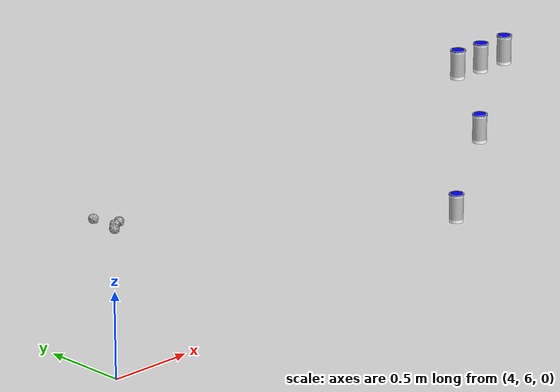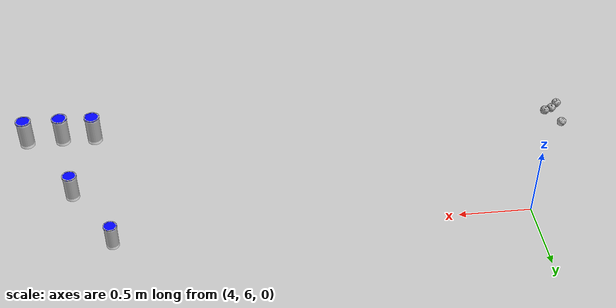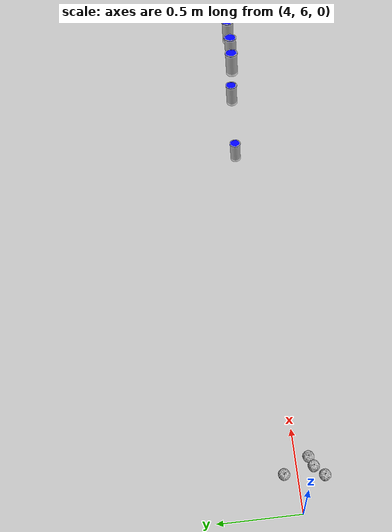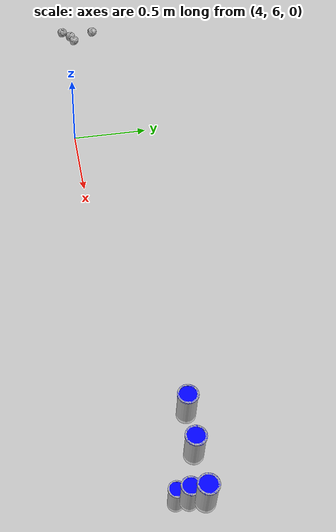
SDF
<sdf version="1.6">
 <world name="default">
  <model name="apple_clone_0">
   <link name="link_0">
    <inertial>
     <mass>1</mass>
     <inertia>
      <ixx>0.166667</ixx>
      <ixy>0</ixy>
      <ixz>0</ixz>
      <iyy>0.166667</iyy>
      <iyz>0</iyz>
      <izz>0.166667</izz>
     </inertia>
    </inertial>
    <visual name="visual">
     <geometry><mesh><uri>model://apple/meshes/apple.dae</uri><scale>1 1 1</scale></mesh></geometry>
    </visual>
    <collision name="collision">
     <geometry><mesh><uri>model://apple/meshes/apple.dae</uri><scale>1 1 1</scale></mesh></geometry>
     <surface>
      <friction>
       <ode><mu>1</mu><mu2>1</mu2><fdir1>0 0 0</fdir1><slip1>0</slip1><slip2>0</slip2></ode>
       <torsional>
        <coefficient>1</coefficient>
        <patch_radius>0</patch_radius>
        <surface_radius>0</surface_radius>
        <use_patch_radius>1</use_patch_radius>
        <ode><slip>0</slip></ode>
       </torsional>
      </friction>
      <bounce><restitution_coefficient>0</restitution_coefficient><threshold>1e+06</threshold></bounce>
      <contact>
       <collide_without_contact>0</collide_without_contact>
       <collide_without_contact_bitmask>1</collide_without_contact_bitmask>
       <collide_bitmask>1</collide_bitmask>
       <ode>
        <soft_cfm>0</soft_cfm>
        <soft_erp>0.2</soft_erp>
        <kp>1e+13</kp>
        <kd>1</kd>
        <max_vel>0.01</max_vel>
        <min_depth>0</min_depth>
       </ode>
       <bullet>
        <split_impulse>1</split_impulse>
        <split_impulse_penetration_threshold>-0.01</split_impulse_penetration_threshold>
        <soft_cfm>0</soft_cfm>
        <soft_erp>0.2</soft_erp>
        <kp>1e+13</kp>
        <kd>1</kd>
       </bullet>
      </contact>
     </surface>
    </collision>
   </link>
   <static>1</static>
   <pose>4 6 0.862702 0 -0 0</pose>
  </model>
  <model name="apple_clone_7">
   <link name="link_0">
    <inertial>
     <mass>1</mass>
     <inertia>
      <ixx>0.166667</ixx>
      <ixy>0</ixy>
      <ixz>0</ixz>
      <iyy>0.166667</iyy>
      <iyz>0</iyz>
      <izz>0.166667</izz>
     </inertia>
    </inertial>
    <visual name="visual">
     <geometry><mesh><uri>model://apple/meshes/apple.dae</uri><scale>1 1 1</scale></mesh></geometry>
    </visual>
    <collision name="collision">
     <geometry><mesh><uri>model://apple/meshes/apple.dae</uri><scale>1 1 1</scale></mesh></geometry>
     <surface>
      <friction>
       <ode><mu>1</mu><mu2>1</mu2><fdir1>0 0 0</fdir1><slip1>0</slip1><slip2>0</slip2></ode>
       <torsional>
        <coefficient>1</coefficient>
        <patch_radius>0</patch_radius>
        <surface_radius>0</surface_radius>
        <use_patch_radius>1</use_patch_radius>
        <ode><slip>0</slip></ode>
       </torsional>
      </friction>
      <bounce><restitution_coefficient>0</restitution_coefficient><threshold>1e+06</threshold></bounce>
      <contact>
       <collide_without_contact>0</collide_without_contact>
       <collide_without_contact_bitmask>1</collide_without_contact_bitmask>
       <collide_bitmask>1</collide_bitmask>
       <ode>
        <soft_cfm>0</soft_cfm>
        <soft_erp>0.2</soft_erp>
        <kp>1e+13</kp>
        <kd>1</kd>
        <max_vel>0.01</max_vel>
        <min_depth>0</min_depth>
       </ode>
       <bullet>
        <split_impulse>1</split_impulse>
        <split_impulse_penetration_threshold>-0.01</split_impulse_penetration_threshold>
        <soft_cfm>0</soft_cfm>
        <soft_erp>0.2</soft_erp>
        <kp>1e+13</kp>
        <kd>1</kd>
       </bullet>
      </contact>
     </surface>
    </collision>
   </link>
   <static>1</static>
   <pose>4.04502 6.01795 0.862702 0 -0 0</pose>
  </model>
  <model name="apple_clone_8">
   <link name="link_0">
    <inertial>
     <mass>1</mass>
     <inertia>
      <ixx>0.166667</ixx>
      <ixy>0</ixy>
      <ixz>0</ixz>
      <iyy>0.166667</iyy>
      <iyz>0</iyz>
      <izz>0.166667</izz>
     </inertia>
    </inertial>
    <visual name="visual">
     <geometry><mesh><uri>model://apple/meshes/apple.dae</uri><scale>1 1 1</scale></mesh></geometry>
    </visual>
    <collision name="collision">
     <geometry><mesh><uri>model://apple/meshes/apple.dae</uri><scale>1 1 1</scale></mesh></geometry>
     <surface>
      <friction>
       <ode><mu>1</mu><mu2>1</mu2><fdir1>0 0 0</fdir1><slip1>0</slip1><slip2>0</slip2></ode>
       <torsional>
        <coefficient>1</coefficient>
        <patch_radius>0</patch_radius>
        <surface_radius>0</surface_radius>
        <use_patch_radius>1</use_patch_radius>
        <ode><slip>0</slip></ode>
       </torsional>
      </friction>
      <bounce><restitution_coefficient>0</restitution_coefficient><threshold>1e+06</threshold></bounce>
      <contact>
       <collide_without_contact>0</collide_without_contact>
       <collide_without_contact_bitmask>1</collide_without_contact_bitmask>
       <collide_bitmask>1</collide_bitmask>
       <ode>
        <soft_cfm>0</soft_cfm>
        <soft_erp>0.2</soft_erp>
        <kp>1e+13</kp>
        <kd>1</kd>
        <max_vel>0.01</max_vel>
        <min_depth>0</min_depth>
       </ode>
       <bullet>
        <split_impulse>1</split_impulse>
        <split_impulse_penetration_threshold>-0.01</split_impulse_penetration_threshold>
        <soft_cfm>0</soft_cfm>
        <soft_erp>0.2</soft_erp>
        <kp>1e+13</kp>
        <kd>1</kd>
       </bullet>
      </contact>
     </surface>
    </collision>
   </link>
   <static>1</static>
   <pose>3.95498 5.95492 0.862702 0 -0 0</pose>
  </model>
  <model name="apple_clone_15">
   <link name="link_0">
    <inertial>
     <mass>1</mass>
     <inertia>
      <ixx>0.166667</ixx>
      <ixy>0</ixy>
      <ixz>0</ixz>
      <iyy>0.166667</iyy>
      <iyz>0</iyz>
      <izz>0.166667</izz>
     </inertia>
    </inertial>
    <visual name="visual">
     <geometry><mesh><uri>model://apple/meshes/apple.dae</uri><scale>1 1 1</scale></mesh></geometry>
    </visual>
    <collision name="collision">
     <geometry><mesh><uri>model://apple/meshes/apple.dae</uri><scale>1 1 1</scale></mesh></geometry>
     <surface>
      <friction>
       <ode><mu>1</mu><mu2>1</mu2><fdir1>0 0 0</fdir1><slip1>0</slip1><slip2>0</slip2></ode>
       <torsional>
        <coefficient>1</coefficient>
        <patch_radius>0</patch_radius>
        <surface_radius>0</surface_radius>
        <use_patch_radius>1</use_patch_radius>
        <ode><slip>0</slip></ode>
       </torsional>
      </friction>
      <bounce><restitution_coefficient>0</restitution_coefficient><threshold>1e+06</threshold></bounce>
      <contact>
       <collide_without_contact>0</collide_without_contact>
       <collide_without_contact_bitmask>1</collide_without_contact_bitmask>
       <collide_bitmask>1</collide_bitmask>
       <ode>
        <soft_cfm>0</soft_cfm>
        <soft_erp>0.2</soft_erp>
        <kp>1e+13</kp>
        <kd>1</kd>
        <max_vel>0.01</max_vel>
        <min_depth>0</min_depth>
       </ode>
       <bullet>
        <split_impulse>1</split_impulse>
        <split_impulse_penetration_threshold>-0.01</split_impulse_penetration_threshold>
        <soft_cfm>0</soft_cfm>
        <soft_erp>0.2</soft_erp>
        <kp>1e+13</kp>
        <kd>1</kd>
       </bullet>
      </contact>
     </surface>
    </collision>
   </link>
   <static>1</static>
   <pose>3.97628 6.1414 0.862702 0 -0 0</pose>
  </model>
  <model name="chips_clone_0">
   <link name="link_2">
    <inertial>
     <mass>1</mass>
     <inertia>
      <ixx>0.166667</ixx>
      <ixy>0</ixy>
      <ixz>0</ixz>
      <iyy>0.166667</iyy>
      <iyz>0</iyz>
      <izz>0.166667</izz>
     </inertia>
    </inertial>
    <visual name="visual">
     <geometry><mesh><uri>model://chips/meshes/chips.dae</uri><scale>1 1 1</scale></mesh></geometry>
    </visual>
    <collision name="collision">
     <geometry><mesh><uri>model://chips/meshes/chips.dae</uri><scale>1 1 1</scale></mesh></geometry>
     <surface>
      <friction>
       <ode><mu>1</mu><mu2>1</mu2><fdir1>0 0 0</fdir1><slip1>0</slip1><slip2>0</slip2></ode>
       <torsional>
        <coefficient>1</coefficient>
        <patch_radius>0</patch_radius>
        <surface_radius>0</surface_radius>
        <use_patch_radius>1</use_patch_radius>
        <ode><slip>0</slip></ode>
       </torsional>
      </friction>
      <bounce><restitution_coefficient>0</restitution_coefficient><threshold>1e+06</threshold></bounce>
      <contact>
       <collide_without_contact>0</collide_without_contact>
       <collide_without_contact_bitmask>1</collide_without_contact_bitmask>
       <collide_bitmask>1</collide_bitmask>
       <ode>
        <soft_cfm>0</soft_cfm>
        <soft_erp>0.2</soft_erp>
        <kp>1e+13</kp>
        <kd>1</kd>
        <max_vel>0.01</max_vel>
        <min_depth>0</min_depth>
       </ode>
       <bullet>
        <split_impulse>1</split_impulse>
        <split_impulse_penetration_threshold>-0.01</split_impulse_penetration_threshold>
        <soft_cfm>0</soft_cfm>
        <soft_erp>0.2</soft_erp>
        <kp>1e+13</kp>
        <kd>1</kd>
       </bullet>
      </contact>
     </surface>
    </collision>
   </link>
   <static>1</static>
   <pose>6.79418 6.14657 0.113708 0 -0 3.11254</pose>
  </model>
  <model name="chips_clone_1_clone">
   <link name="link_2">
    <inertial>
     <mass>1</mass>
     <inertia>
      <ixx>0.166667</ixx>
      <ixy>0</ixy>
      <ixz>0</ixz>
      <iyy>0.166667</iyy>
      <iyz>0</iyz>
      <izz>0.166667</izz>
     </inertia>
    </inertial>
    <visual name="visual">
     <geometry><mesh><uri>model://chips/meshes/chips.dae</uri><scale>1 1 1</scale></mesh></geometry>
    </visual>
    <collision name="collision">
     <geometry><mesh><uri>model://chips/meshes/chips.dae</uri><scale>1 1 1</scale></mesh></geometry>
     <surface>
      <friction>
       <ode><mu>1</mu><mu2>1</mu2><fdir1>0 0 0</fdir1><slip1>0</slip1><slip2>0</slip2></ode>
       <torsional>
        <coefficient>1</coefficient>
        <patch_radius>0</patch_radius>
        <surface_radius>0</surface_radius>
        <use_patch_radius>1</use_patch_radius>
        <ode><slip>0</slip></ode>
       </torsional>
      </friction>
      <bounce><restitution_coefficient>0</restitution_coefficient><threshold>1e+06</threshold></bounce>
      <contact>
       <collide_without_contact>0</collide_without_contact>
       <collide_without_contact_bitmask>1</collide_without_contact_bitmask>
       <collide_bitmask>1</collide_bitmask>
       <ode>
        <soft_cfm>0</soft_cfm>
        <soft_erp>0.2</soft_erp>
        <kp>1e+13</kp>
        <kd>1</kd>
        <max_vel>0.01</max_vel>
        <min_depth>0</min_depth>
       </ode>
       <bullet>
        <split_impulse>1</split_impulse>
        <split_impulse_penetration_threshold>-0.01</split_impulse_penetration_threshold>
        <soft_cfm>0</soft_cfm>
        <soft_erp>0.2</soft_erp>
        <kp>1e+13</kp>
        <kd>1</kd>
       </bullet>
      </contact>
     </surface>
    </collision>
   </link>
   <static>1</static>
   <pose>6.98147 6.14681 0.552726 0 -0 3.11254</pose>
  </model>
  <model name="chips_clone_1_clone_1">
   <link name="link_2">
    <inertial>
     <mass>1</mass>
     <inertia>
      <ixx>0.166667</ixx>
      <ixy>0</ixy>
      <ixz>0</ixz>
      <iyy>0.166667</iyy>
      <iyz>0</iyz>
      <izz>0.166667</izz>
     </inertia>
    </inertial>
    <visual name="visual">
     <geometry><mesh><uri>model://chips/meshes/chips.dae</uri><scale>1 1 1</scale></mesh></geometry>
    </visual>
    <collision name="collision">
     <geometry><mesh><uri>model://chips/meshes/chips.dae</uri><scale>1 1 1</scale></mesh></geometry>
     <surface>
      <friction>
       <ode><mu>1</mu><mu2>1</mu2><fdir1>0 0 0</fdir1><slip1>0</slip1><slip2>0</slip2></ode>
       <torsional>
        <coefficient>1</coefficient>
        <patch_radius>0</patch_radius>
        <surface_radius>0</surface_radius>
        <use_patch_radius>1</use_patch_radius>
        <ode><slip>0</slip></ode>
       </torsional>
      </friction>
      <bounce><restitution_coefficient>0</restitution_coefficient><threshold>1e+06</threshold></bounce>
      <contact>
       <collide_without_contact>0</collide_without_contact>
       <collide_without_contact_bitmask>1</collide_without_contact_bitmask>
       <collide_bitmask>1</collide_bitmask>
       <ode>
        <soft_cfm>0</soft_cfm>
        <soft_erp>0.2</soft_erp>
        <kp>1e+13</kp>
        <kd>1</kd>
        <max_vel>0.01</max_vel>
        <min_depth>0</min_depth>
       </ode>
       <bullet>
        <split_impulse>1</split_impulse>
        <split_impulse_penetration_threshold>-0.01</split_impulse_penetration_threshold>
        <soft_cfm>0</soft_cfm>
        <soft_erp>0.2</soft_erp>
        <kp>1e+13</kp>
        <kd>1</kd>
       </bullet>
      </contact>
     </surface>
    </collision>
   </link>
   <static>1</static>
   <pose>6.78893 6.14768 0.983928 0 -0 3.11254</pose>
  </model>
  <model name="chips_clone_1_clone_1_clone">
   <link name="link_2">
    <inertial>
     <mass>1</mass>
     <inertia>
      <ixx>0.166667</ixx>
      <ixy>0</ixy>
      <ixz>0</ixz>
      <iyy>0.166667</iyy>
      <iyz>0</iyz>
      <izz>0.166667</izz>
     </inertia>
    </inertial>
    <visual name="visual">
     <geometry><mesh><uri>model://chips/meshes/chips.dae</uri><scale>1 1 1</scale></mesh></geometry>
    </visual>
    <collision name="collision">
     <geometry><mesh><uri>model://chips/meshes/chips.dae</uri><scale>1 1 1</scale></mesh></geometry>
     <surface>
      <friction>
       <ode><mu>1</mu><mu2>1</mu2><fdir1>0 0 0</fdir1><slip1>0</slip1><slip2>0</slip2></ode>
       <torsional>
        <coefficient>1</coefficient>
        <patch_radius>0</patch_radius>
        <surface_radius>0</surface_radius>
        <use_patch_radius>1</use_patch_radius>
        <ode><slip>0</slip></ode>
       </torsional>
      </friction>
      <bounce><restitution_coefficient>0</restitution_coefficient><threshold>1e+06</threshold></bounce>
      <contact>
       <collide_without_contact>0</collide_without_contact>
       <collide_without_contact_bitmask>1</collide_without_contact_bitmask>
       <collide_bitmask>1</collide_bitmask>
       <ode>
        <soft_cfm>0</soft_cfm>
        <soft_erp>0.2</soft_erp>
        <kp>1e+13</kp>
        <kd>1</kd>
        <max_vel>0.01</max_vel>
        <min_depth>0</min_depth>
       </ode>
       <bullet>
        <split_impulse>1</split_impulse>
        <split_impulse_penetration_threshold>-0.01</split_impulse_penetration_threshold>
        <soft_cfm>0</soft_cfm>
        <soft_erp>0.2</soft_erp>
        <kp>1e+13</kp>
        <kd>1</kd>
       </bullet>
      </contact>
     </surface>
    </collision>
   </link>
   <static>1</static>
   <pose>6.9726 6.14046 0.983928 0 -0 3.11254</pose>
  </model>
  <model name="chips_clone_1_clone_1_clone_0">
   <link name="link_2">
    <inertial>
     <mass>1</mass>
     <inertia>
      <ixx>0.166667</ixx>
      <ixy>0</ixy>
      <ixz>0</ixz>
      <iyy>0.166667</iyy>
      <iyz>0</iyz>
      <izz>0.166667</izz>
     </inertia>
    </inertial>
    <visual name="visual">
     <geometry><mesh><uri>model://chips/meshes/chips.dae</uri><scale>1 1 1</scale></mesh></geometry>
    </visual>
    <collision name="collision">
     <geometry><mesh><uri>model://chips/meshes/chips.dae</uri><scale>1 1 1</scale></mesh></geometry>
     <surface>
      <friction>
       <ode><mu>1</mu><mu2>1</mu2><fdir1>0 0 0</fdir1><slip1>0</slip1><slip2>0</slip2></ode>
       <torsional>
        <coefficient>1</coefficient>
        <patch_radius>0</patch_radius>
        <surface_radius>0</surface_radius>
        <use_patch_radius>1</use_patch_radius>
        <ode><slip>0</slip></ode>
       </torsional>
      </friction>
      <bounce><restitution_coefficient>0</restitution_coefficient><threshold>1e+06</threshold></bounce>
      <contact>
       <collide_without_contact>0</collide_without_contact>
       <collide_without_contact_bitmask>1</collide_without_contact_bitmask>
       <collide_bitmask>1</collide_bitmask>
       <ode>
        <soft_cfm>0</soft_cfm>
        <soft_erp>0.2</soft_erp>
        <kp>1e+13</kp>
        <kd>1</kd>
        <max_vel>0.01</max_vel>
        <min_depth>0</min_depth>
       </ode>
       <bullet>
        <split_impulse>1</split_impulse>
        <split_impulse_penetration_threshold>-0.01</split_impulse_penetration_threshold>
        <soft_cfm>0</soft_cfm>
        <soft_erp>0.2</soft_erp>
        <kp>1e+13</kp>
        <kd>1</kd>
       </bullet>
      </contact>
     </surface>
    </collision>
   </link>
   <static>1</static>
   <pose>7.17473 6.14418 0.983928 0 -0 3.11254</pose>
  </model>
 </world>
</sdf>
